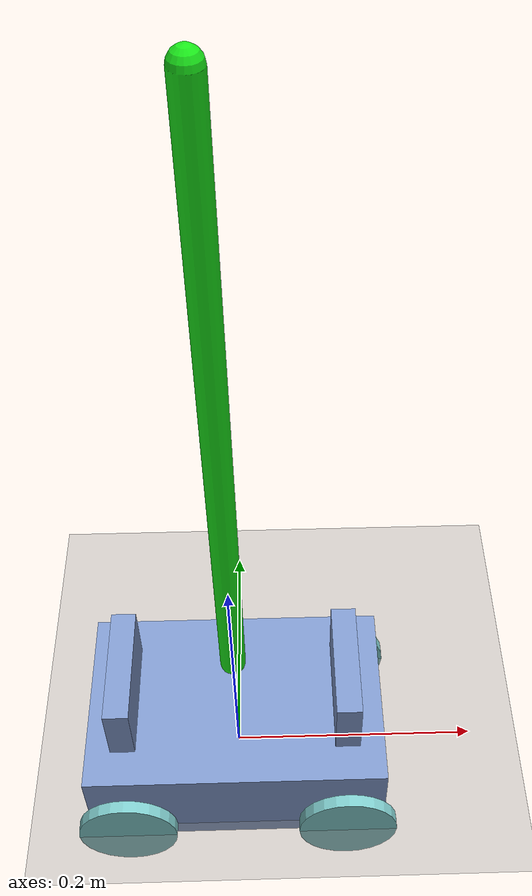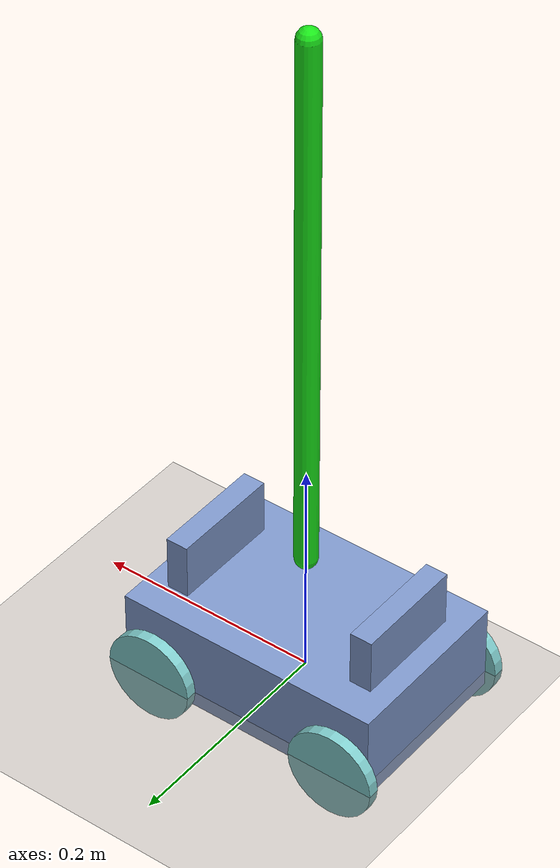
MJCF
<mujoco model="cartopole">

<compiler coordinate="global" inertiafromgeom="true" angle="degree"/>

<default>
    <joint limited="true" damping="1" stiffness="0" armature=".1" user="0"/>
    <geom solref="0.008 1" solimp="0.95 0.95 0.01" margin="0.001" user="0"/>
    <motor ctrllimited="true" ctrlrange="-1 1"/>
    <position ctrllimited="true"/>

    <default class="cart">
        <geom friction="1 0.005 0.001" rgba=".75 .6 .5 1" contype="1" conaffinity="0"/>
    </default>
    <default class="pendulum">
        <joint damping="5"/>
    </default>
</default>

<option timestep="0.002" iterations="50" solver="PGS">
    <flag energy="enable"/>
</option>

<worldbody>
    <light diffuse=".5 .5 .5" pos="0 0 3" dir="0 0 -1"/>
    <geom type="plane" size="1 1 0.1" rgba=".5 .5 .5 1"/>

    <!--  ================= pendulum ================= /-->
    <body name="pendulum">
        <joint class="pendulum" name="joint" type="hinge" pos="0 0 0.115" axis="0 1 0" range="-180 180" damping="5" stiffness="20" armature="0.02"/>
        <geom class="pendulum" name="link" type="capsule" fromto="0 0 0.115 0 0 0.6" size=".01 0.01 0.2" rgba=".1 .9 .1 1"/>
    </body>

    <!--  ================= Cart ================= /-->
<body name="cart">
    <geom class="cart" name="cartbody" type="box" pos="0 0 0.025" size="0.12 0.08 0.04" rgba="0.5 0.6 0.8 1"/>
    <geom class="cart" name="cartbodyp1" type="box" pos="0.09 0.0 0.065" size="0.01 0.05 0.05" rgba="0.5 0.6 0.8 1"/>
    <geom class="cart" name="cartbodyp2" type="box" pos="-0.09 0.0 0.065" size="0.01 0.05 0.05" rgba="0.5 0.6 0.8 1"/>
    <joint class="cart" name="wheel1" type="hinge" pos="0.09 0.08 0" axis="0 1 0" limited="false" damping="5" stiffness="20" armature="0.02"/>
    <geom type="cylinder" name="Wheel1"  fromto="0.09 0.08 0 0.09 0.09 0" size="0.04" rgba="0.5 0.8 0.8 1"/>
    <joint class="cart" name="wheel2" type="hinge" pos="0.09 -0.08 0" axis="0 1 0" limited="false" damping="5" stiffness="20" armature="0.02"/>
    <geom type="cylinder" name="Wheel2"  fromto="0.09 -0.08 0 0.09 -0.09 0" size="0.04" rgba="0.5 0.8 0.8 1"/>
    <joint class="cart" name="wheel3" type="hinge" pos="-0.09 0.08 0.1" axis="0 -1 0" limited="false" damping="5" stiffness="20" armature="0.02"/>
    <geom type="cylinder" name="Wheel3"  fromto="-0.09 0.08 0 -0.09 0.09 0" size="0.04" rgba="0.5 0.8 0.8 1"/>
    <joint class="cart" name="wheel4" type="hinge" pos="-0.09 -0.08 0.1" axis="0 -1 0" limited="false" damping="5" stiffness="20" armature="0.02"/>
    <geom type="cylinder" name="Wheel4"  fromto="-0.09 -0.08 0 -0.09 -0.09 0" size="0.04" rgba="0.5 0.8 0.8 1"/>

</body>
</worldbody>
<actuator>
<!--  ================= Torque actuators ================= -->

 <!--  ================= Position actuators ================= -->

   <position joint="joint" name="Joint" kp="100" ctrlrange="-12.57 12.57"/>
   <position joint="wheel1" name="whEel1" kp="100" ctrlrange="-12.57 12.57"/>
   <position joint="wheel2" name="whEel2" kp="100" ctrlrange="-12.57 12.57"/>
   <position joint="wheel3" name="whEel3" kp="100" ctrlrange="-12.57 12.57"/>
   <position joint="wheel4" name="whEel4" kp="100" ctrlrange="-12.57 12.57"/>
</actuator>
</mujoco>
